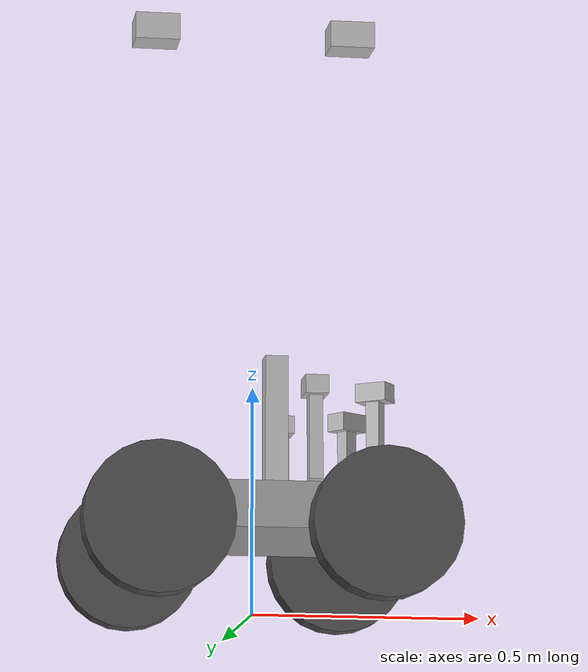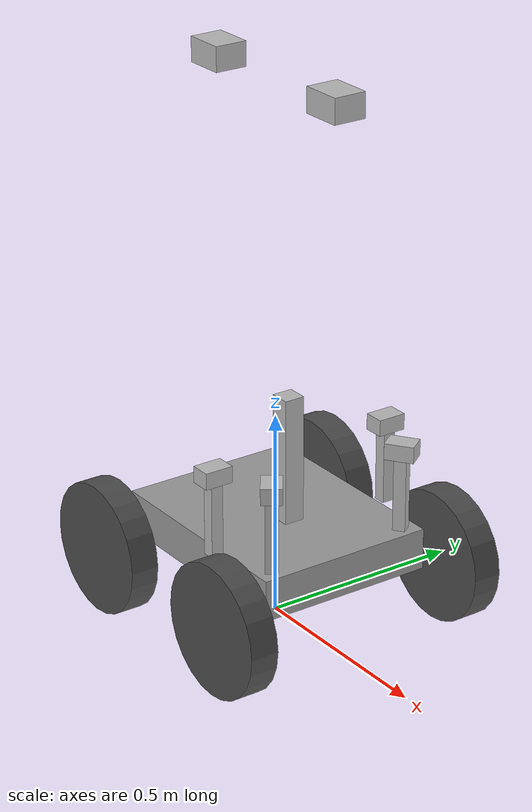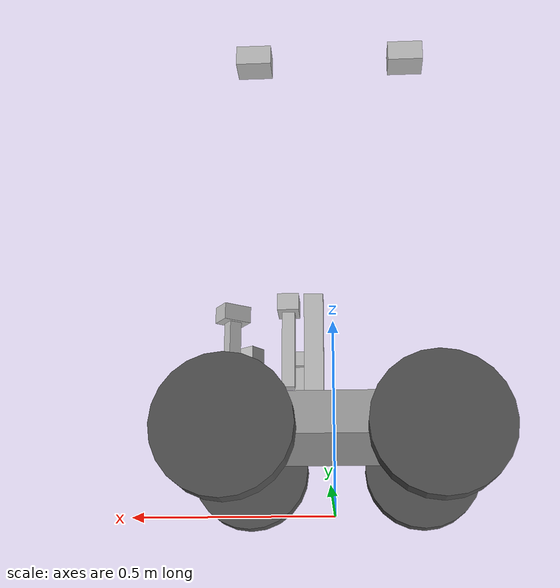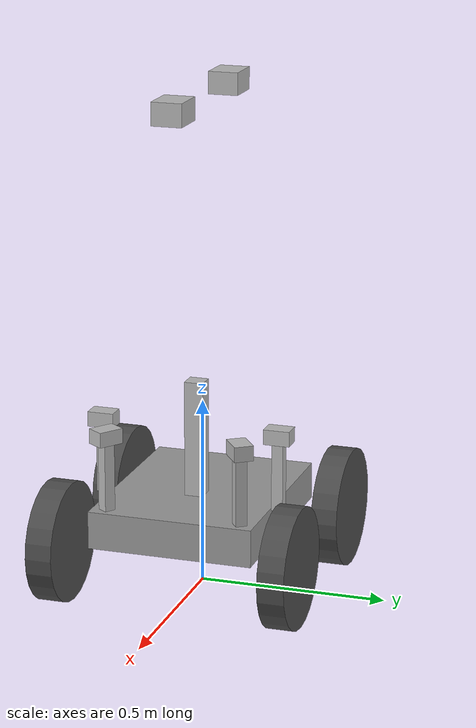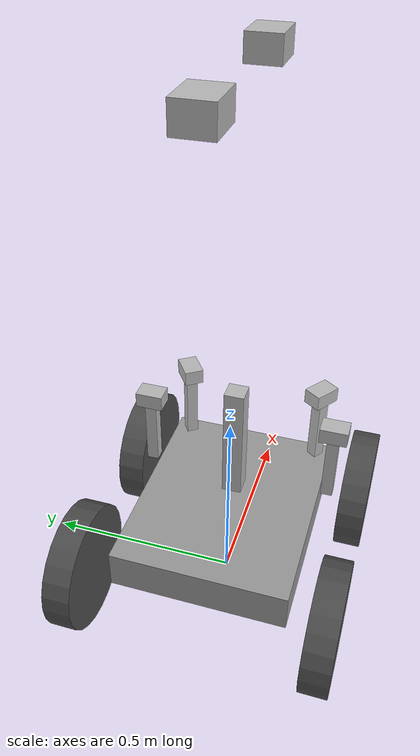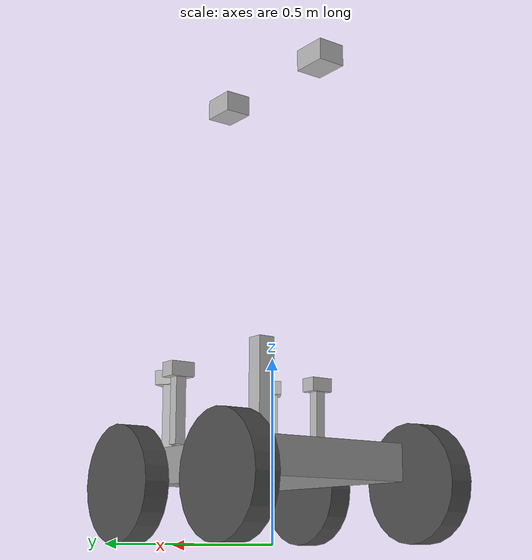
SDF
<sdf version='1.7'>
  <model name='mrsim_rover'>
    <link name='base_footprint'>
      <inertial>
        <pose>0 0 0.16 0 -0 0</pose>
        <mass>10</mass>
        <inertia>
          <ixx>0.3</ixx>
          <ixy>0</ixy>
          <ixz>0</ixz>
          <iyy>0.5</iyy>
          <iyz>0</iyz>
          <izz>0.3</izz>
        </inertia>
      </inertial>
      <collision name='base_footprint_fixed_joint_lump__base_link_collision'>
        <pose>0 0 0.21 0 -0 0</pose>
        <geometry>
          <box>
            <size>0.55 0.44 0.1</size>
          </box>
        </geometry>
        <surface>
          <contact>
            <ode/>
          </contact>
          <friction>
            <ode/>
          </friction>
        </surface>
      </collision>
      <visual name='base_footprint_fixed_joint_lump__base_link_visual'>
        <pose>0 0 0.21 0 -0 0</pose>
        <geometry>
          <box>
            <size>0.55 0.44 0.1</size>
          </box>
        </geometry>
        <material>
          <script>
            <name>Gazebo/Grey</name>
            <uri>file://media/materials/scripts/gazebo.material</uri>
          </script>
        </material>
      </visual>
      <visual name='base_footprint_fixed_joint_lump__camera_back_mount_visual_1'>
        <pose>-0.22 0 1.31 0 -0 0</pose>
        <geometry>
          <box>
            <size>0.1 0.08 0.06</size>
          </box>
        </geometry>
      </visual>
      <visual name='base_footprint_fixed_joint_lump__camera_mount_visual_2'>
        <pose>0.22 0 1.31 0 -0 0</pose>
        <geometry>
          <box>
            <size>0.1 0.08 0.06</size>
          </box>
        </geometry>
      </visual>
      <visual name='base_footprint_fixed_joint_lump__mast_visual_3'>
        <pose>0.05 0 0.39 0 -0 0</pose>
        <geometry>
          <box>
            <size>0.05 0.05 0.36</size>
          </box>
        </geometry>
      </visual>
      <visual name='base_footprint_fixed_joint_lump__tof_fl_link_visual_4'>
        <pose>0.24 0.18 0.46 0 -0 0.610865</pose>
        <geometry>
          <box>
            <size>0.07 0.05 0.04</size>
          </box>
        </geometry>
      </visual>
      <visual name='base_footprint_fixed_joint_lump__tof_fl_link_visual_5'>
        <pose>0.24 0.18 0.36 0 -0 0.610865</pose>
        <geometry>
          <box>
            <size>0.03 0.03 0.2</size>
          </box>
        </geometry>
      </visual>
      <visual name='base_footprint_fixed_joint_lump__tof_fr_link_visual_6'>
        <pose>0.24 -0.18 0.46 0 0 -0.610865</pose>
        <geometry>
          <box>
            <size>0.07 0.05 0.04</size>
          </box>
        </geometry>
      </visual>
      <visual name='base_footprint_fixed_joint_lump__tof_fr_link_visual_7'>
        <pose>0.24 -0.18 0.36 0 0 -0.610865</pose>
        <geometry>
          <box>
            <size>0.03 0.03 0.2</size>
          </box>
        </geometry>
      </visual>
      <visual name='base_footprint_fixed_joint_lump__tof_left_link_visual_8'>
        <pose>0.1 0.24 0.46 0 -0 1.5708</pose>
        <geometry>
          <box>
            <size>0.07 0.05 0.04</size>
          </box>
        </geometry>
      </visual>
      <visual name='base_footprint_fixed_joint_lump__tof_left_link_visual_9'>
        <pose>0.1 0.24 0.36 0 -0 1.5708</pose>
        <geometry>
          <box>
            <size>0.03 0.03 0.2</size>
          </box>
        </geometry>
      </visual>
      <visual name='base_footprint_fixed_joint_lump__tof_right_link_visual_10'>
        <pose>0.1 -0.24 0.46 0 0 -1.5708</pose>
        <geometry>
          <box>
            <size>0.07 0.05 0.04</size>
          </box>
        </geometry>
      </visual>
      <visual name='base_footprint_fixed_joint_lump__tof_right_link_visual_11'>
        <pose>0.1 -0.24 0.36 0 0 -1.5708</pose>
        <geometry>
          <box>
            <size>0.03 0.03 0.2</size>
          </box>
        </geometry>
      </visual>
      <sensor name='back_cam' type='camera'>
        <always_on>1</always_on>
        <update_rate>20</update_rate>
        <visualize>0</visualize>
        <camera name='back_cam_intrinsics'>
          <horizontal_fov>1.13446</horizontal_fov>
          <image>
            <width>640</width>
            <height>480</height>
            <format>R8G8B8</format>
          </image>
          <clip>
            <near>0.02</near>
            <far>60</far>
          </clip>
        </camera>
        <plugin name='camera_back_ros' filename='libgazebo_ros_camera.so'>
          <ros>
            <namespace>/</namespace>
            <remapping>image_raw:=camera_back/image_raw</remapping>
            <remapping>camera_info:=camera_back/camera_info</remapping>
          </ros>
          <camera_name>camera_back</camera_name>
          <frame_name>camera_back_optical</frame_name>
          <image_rate>20.0</image_rate>
        </plugin>
        <pose>-0.28 0 1.36 0 0.42 3.14159</pose>
      </sensor>
      <sensor name='front_cam' type='camera'>
        <always_on>1</always_on>
        <update_rate>20</update_rate>
        <visualize>0</visualize>
        <camera name='front_cam_intrinsics'>
          <horizontal_fov>1.13446</horizontal_fov>
          <image>
            <width>640</width>
            <height>480</height>
            <format>R8G8B8</format>
          </image>
          <clip>
            <near>0.02</near>
            <far>60</far>
          </clip>
        </camera>
        <plugin name='camera_ros' filename='libgazebo_ros_camera.so'>
          <ros>
            <namespace>/</namespace>
            <remapping>image_raw:=camera/image_raw</remapping>
            <remapping>camera_info:=camera/camera_info</remapping>
          </ros>
          <camera_name>camera</camera_name>
          <frame_name>camera_optical</frame_name>
          <image_rate>20.0</image_rate>
        </plugin>
        <pose>0.28 0 1.36 0 0.42 0</pose>
      </sensor>
      <sensor name='tof_front_left' type='ray'>
        <always_on>1</always_on>
        <update_rate>20</update_rate>
        <visualize>0</visualize>
        <ray>
          <scan>
            <horizontal>
              <samples>5</samples>
              <resolution>1</resolution>
              <min_angle>-0.1</min_angle>
              <max_angle>0.1</max_angle>
            </horizontal>
            <vertical>
              <samples>1</samples>
              <resolution>1</resolution>
              <min_angle>0</min_angle>
              <max_angle>0</max_angle>
            </vertical>
          </scan>
          <range>
            <min>0.05</min>
            <max>4</max>
            <resolution>0.01</resolution>
          </range>
        </ray>
        <plugin name='tof_front_left_ros' filename='libgazebo_ros_ray_sensor.so'>
          <ros>
            <namespace>/</namespace>
            <remapping>~/out:=tof/front_left</remapping>
          </ros>
          <output_type>sensor_msgs/Range</output_type>
          <frame_name>tof_fl_link</frame_name>
          <radiation_type>infrared</radiation_type>
        </plugin>
        <pose>0.24 0.18 0.46 0 -0 0.610865</pose>
      </sensor>
      <sensor name='tof_front_right' type='ray'>
        <always_on>1</always_on>
        <update_rate>20</update_rate>
        <visualize>0</visualize>
        <ray>
          <scan>
            <horizontal>
              <samples>5</samples>
              <resolution>1</resolution>
              <min_angle>-0.1</min_angle>
              <max_angle>0.1</max_angle>
            </horizontal>
            <vertical>
              <samples>1</samples>
              <resolution>1</resolution>
              <min_angle>0</min_angle>
              <max_angle>0</max_angle>
            </vertical>
          </scan>
          <range>
            <min>0.05</min>
            <max>4</max>
            <resolution>0.01</resolution>
          </range>
        </ray>
        <plugin name='tof_front_right_ros' filename='libgazebo_ros_ray_sensor.so'>
          <ros>
            <namespace>/</namespace>
            <remapping>~/out:=tof/front_right</remapping>
          </ros>
          <output_type>sensor_msgs/Range</output_type>
          <frame_name>tof_fr_link</frame_name>
          <radiation_type>infrared</radiation_type>
        </plugin>
        <pose>0.24 -0.18 0.46 0 0 -0.610865</pose>
      </sensor>
      <sensor name='tof_left' type='ray'>
        <always_on>1</always_on>
        <update_rate>20</update_rate>
        <visualize>0</visualize>
        <ray>
          <scan>
            <horizontal>
              <samples>5</samples>
              <resolution>1</resolution>
              <min_angle>-0.1</min_angle>
              <max_angle>0.1</max_angle>
            </horizontal>
            <vertical>
              <samples>1</samples>
              <resolution>1</resolution>
              <min_angle>0</min_angle>
              <max_angle>0</max_angle>
            </vertical>
          </scan>
          <range>
            <min>0.05</min>
            <max>4</max>
            <resolution>0.01</resolution>
          </range>
        </ray>
        <plugin name='tof_left_ros' filename='libgazebo_ros_ray_sensor.so'>
          <ros>
            <namespace>/</namespace>
            <remapping>~/out:=tof/left</remapping>
          </ros>
          <output_type>sensor_msgs/Range</output_type>
          <frame_name>tof_left_link</frame_name>
          <radiation_type>infrared</radiation_type>
        </plugin>
        <pose>0.1 0.24 0.46 0 -0 1.5708</pose>
      </sensor>
      <sensor name='tof_right' type='ray'>
        <always_on>1</always_on>
        <update_rate>20</update_rate>
        <visualize>0</visualize>
        <ray>
          <scan>
            <horizontal>
              <samples>5</samples>
              <resolution>1</resolution>
              <min_angle>-0.1</min_angle>
              <max_angle>0.1</max_angle>
            </horizontal>
            <vertical>
              <samples>1</samples>
              <resolution>1</resolution>
              <min_angle>0</min_angle>
              <max_angle>0</max_angle>
            </vertical>
          </scan>
          <range>
            <min>0.05</min>
            <max>4</max>
            <resolution>0.01</resolution>
          </range>
        </ray>
        <plugin name='tof_right_ros' filename='libgazebo_ros_ray_sensor.so'>
          <ros>
            <namespace>/</namespace>
            <remapping>~/out:=tof/right</remapping>
          </ros>
          <output_type>sensor_msgs/Range</output_type>
          <frame_name>tof_right_link</frame_name>
          <radiation_type>infrared</radiation_type>
        </plugin>
        <pose>0.1 -0.24 0.46 0 0 -1.5708</pose>
      </sensor>
    </link>
    <joint name='wheel_bl_joint' type='revolute'>
      <pose relative_to='base_footprint'>-0.24 0.31 0.16 0 -0 0</pose>
      <parent>base_footprint</parent>
      <child>wheel_bl</child>
      <axis>
        <xyz>0 1 0</xyz>
        <limit>
          <lower>-1e+16</lower>
          <upper>1e+16</upper>
        </limit>
        <dynamics>
          <spring_reference>0</spring_reference>
          <spring_stiffness>0</spring_stiffness>
        </dynamics>
      </axis>
    </joint>
    <link name='wheel_bl'>
      <pose relative_to='wheel_bl_joint'>0 0 0 0 -0 0</pose>
      <inertial>
        <pose>0 0 0 0 -0 0</pose>
        <mass>0.6</mass>
        <inertia>
          <ixx>0.004</ixx>
          <ixy>0</ixy>
          <ixz>0</ixz>
          <iyy>0.009</iyy>
          <iyz>0</iyz>
          <izz>0.004</izz>
        </inertia>
      </inertial>
      <collision name='wheel_bl_collision'>
        <pose>0 0 0 1.5708 -0 0</pose>
        <geometry>
          <cylinder>
            <length>0.07</length>
            <radius>0.16</radius>
          </cylinder>
        </geometry>
        <surface>
          <contact>
            <ode>
              <kp>1e+06</kp>
              <kd>100</kd>
            </ode>
          </contact>
          <friction>
            <ode>
              <mu>1</mu>
              <mu2>1</mu2>
            </ode>
          </friction>
        </surface>
      </collision>
      <visual name='wheel_bl_visual'>
        <pose>0 0 0 1.5708 -0 0</pose>
        <geometry>
          <cylinder>
            <length>0.07</length>
            <radius>0.16</radius>
          </cylinder>
        </geometry>
        <material>
          <script>
            <name>Gazebo/DarkGrey</name>
            <uri>file://media/materials/scripts/gazebo.material</uri>
          </script>
        </material>
      </visual>
    </link>
    <joint name='wheel_br_joint' type='revolute'>
      <pose relative_to='base_footprint'>-0.24 -0.31 0.16 0 -0 0</pose>
      <parent>base_footprint</parent>
      <child>wheel_br</child>
      <axis>
        <xyz>0 1 0</xyz>
        <limit>
          <lower>-1e+16</lower>
          <upper>1e+16</upper>
        </limit>
        <dynamics>
          <spring_reference>0</spring_reference>
          <spring_stiffness>0</spring_stiffness>
        </dynamics>
      </axis>
    </joint>
    <link name='wheel_br'>
      <pose relative_to='wheel_br_joint'>0 0 0 0 -0 0</pose>
      <inertial>
        <pose>0 0 0 0 -0 0</pose>
        <mass>0.6</mass>
        <inertia>
          <ixx>0.004</ixx>
          <ixy>0</ixy>
          <ixz>0</ixz>
          <iyy>0.009</iyy>
          <iyz>0</iyz>
          <izz>0.004</izz>
        </inertia>
      </inertial>
      <collision name='wheel_br_collision'>
        <pose>0 0 0 1.5708 -0 0</pose>
        <geometry>
          <cylinder>
            <length>0.07</length>
            <radius>0.16</radius>
          </cylinder>
        </geometry>
        <surface>
          <contact>
            <ode>
              <kp>1e+06</kp>
              <kd>100</kd>
            </ode>
          </contact>
          <friction>
            <ode>
              <mu>1</mu>
              <mu2>1</mu2>
            </ode>
          </friction>
        </surface>
      </collision>
      <visual name='wheel_br_visual'>
        <pose>0 0 0 1.5708 -0 0</pose>
        <geometry>
          <cylinder>
            <length>0.07</length>
            <radius>0.16</radius>
          </cylinder>
        </geometry>
        <material>
          <script>
            <name>Gazebo/DarkGrey</name>
            <uri>file://media/materials/scripts/gazebo.material</uri>
          </script>
        </material>
      </visual>
    </link>
    <joint name='wheel_fl_joint' type='revolute'>
      <pose relative_to='base_footprint'>0.24 0.31 0.16 0 -0 0</pose>
      <parent>base_footprint</parent>
      <child>wheel_fl</child>
      <axis>
        <xyz>0 1 0</xyz>
        <limit>
          <lower>-1e+16</lower>
          <upper>1e+16</upper>
        </limit>
        <dynamics>
          <spring_reference>0</spring_reference>
          <spring_stiffness>0</spring_stiffness>
        </dynamics>
      </axis>
    </joint>
    <link name='wheel_fl'>
      <pose relative_to='wheel_fl_joint'>0 0 0 0 -0 0</pose>
      <inertial>
        <pose>0 0 0 0 -0 0</pose>
        <mass>0.6</mass>
        <inertia>
          <ixx>0.004</ixx>
          <ixy>0</ixy>
          <ixz>0</ixz>
          <iyy>0.009</iyy>
          <iyz>0</iyz>
          <izz>0.004</izz>
        </inertia>
      </inertial>
      <collision name='wheel_fl_collision'>
        <pose>0 0 0 1.5708 -0 0</pose>
        <geometry>
          <cylinder>
            <length>0.07</length>
            <radius>0.16</radius>
          </cylinder>
        </geometry>
        <surface>
          <contact>
            <ode>
              <kp>1e+06</kp>
              <kd>100</kd>
            </ode>
          </contact>
          <friction>
            <ode>
              <mu>1</mu>
              <mu2>1</mu2>
            </ode>
          </friction>
        </surface>
      </collision>
      <visual name='wheel_fl_visual'>
        <pose>0 0 0 1.5708 -0 0</pose>
        <geometry>
          <cylinder>
            <length>0.07</length>
            <radius>0.16</radius>
          </cylinder>
        </geometry>
        <material>
          <script>
            <name>Gazebo/DarkGrey</name>
            <uri>file://media/materials/scripts/gazebo.material</uri>
          </script>
        </material>
      </visual>
    </link>
    <joint name='wheel_fr_joint' type='revolute'>
      <pose relative_to='base_footprint'>0.24 -0.31 0.16 0 -0 0</pose>
      <parent>base_footprint</parent>
      <child>wheel_fr</child>
      <axis>
        <xyz>0 1 0</xyz>
        <limit>
          <lower>-1e+16</lower>
          <upper>1e+16</upper>
        </limit>
        <dynamics>
          <spring_reference>0</spring_reference>
          <spring_stiffness>0</spring_stiffness>
        </dynamics>
      </axis>
    </joint>
    <link name='wheel_fr'>
      <pose relative_to='wheel_fr_joint'>0 0 0 0 -0 0</pose>
      <inertial>
        <pose>0 0 0 0 -0 0</pose>
        <mass>0.6</mass>
        <inertia>
          <ixx>0.004</ixx>
          <ixy>0</ixy>
          <ixz>0</ixz>
          <iyy>0.009</iyy>
          <iyz>0</iyz>
          <izz>0.004</izz>
        </inertia>
      </inertial>
      <collision name='wheel_fr_collision'>
        <pose>0 0 0 1.5708 -0 0</pose>
        <geometry>
          <cylinder>
            <length>0.07</length>
            <radius>0.16</radius>
          </cylinder>
        </geometry>
        <surface>
          <contact>
            <ode>
              <kp>1e+06</kp>
              <kd>100</kd>
            </ode>
          </contact>
          <friction>
            <ode>
              <mu>1</mu>
              <mu2>1</mu2>
            </ode>
          </friction>
        </surface>
      </collision>
      <visual name='wheel_fr_visual'>
        <pose>0 0 0 1.5708 -0 0</pose>
        <geometry>
          <cylinder>
            <length>0.07</length>
            <radius>0.16</radius>
          </cylinder>
        </geometry>
        <material>
          <script>
            <name>Gazebo/DarkGrey</name>
            <uri>file://media/materials/scripts/gazebo.material</uri>
          </script>
        </material>
      </visual>
    </link>
    <static>0</static>
    <plugin name='diff_drive' filename='libgazebo_ros_diff_drive.so'>
      <ros>
        <namespace>/</namespace>
        <remapping>cmd_vel:=cmd_vel</remapping>
        <remapping>odom:=odom</remapping>
      </ros>
      <update_rate>50</update_rate>
      <num_wheel_pairs>2</num_wheel_pairs>
      <left_joint>wheel_fl_joint</left_joint>
      <left_joint>wheel_bl_joint</left_joint>
      <right_joint>wheel_fr_joint</right_joint>
      <right_joint>wheel_br_joint</right_joint>
      <wheel_separation>0.62</wheel_separation>
      <wheel_separation>0.62</wheel_separation>
      <wheel_diameter>0.32</wheel_diameter>
      <wheel_diameter>0.32</wheel_diameter>
      <max_wheel_torque>30.0</max_wheel_torque>
      <max_wheel_acceleration>8.0</max_wheel_acceleration>
      <command_topic>cmd_vel</command_topic>
      <odometry_topic>odom</odometry_topic>
      <odometry_frame>odom</odometry_frame>
      <robot_base_frame>base_footprint</robot_base_frame>
      <publish_odom>1</publish_odom>
      <publish_wheel_tf>0</publish_wheel_tf>
      <publish_tf>1</publish_tf>
    </plugin>
  </model>
</sdf>
